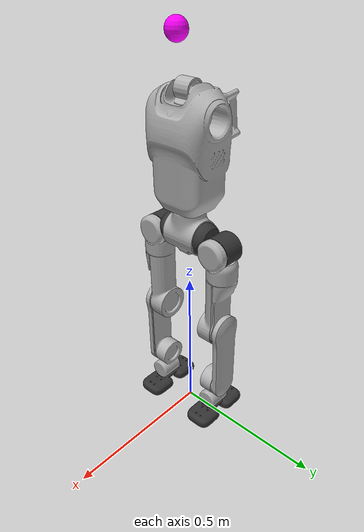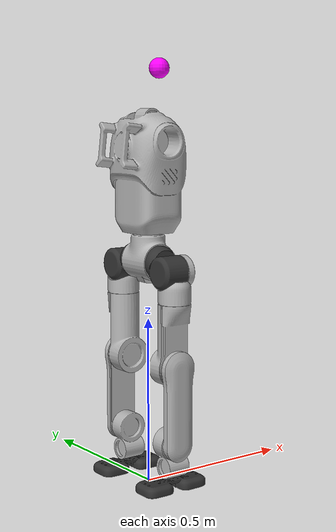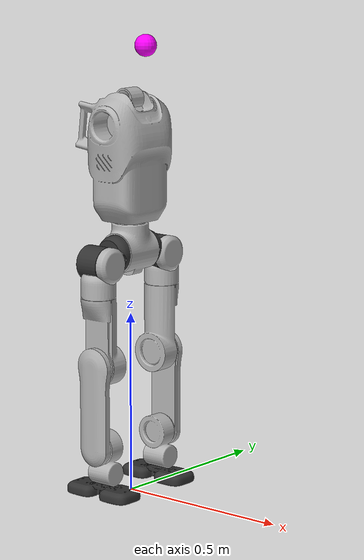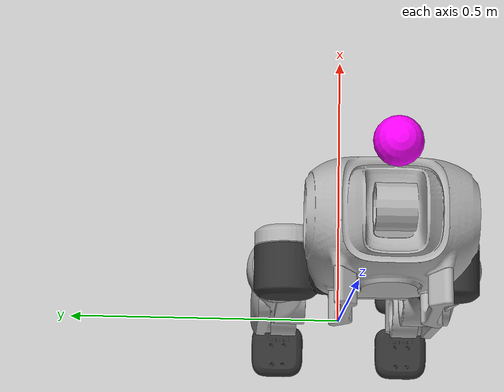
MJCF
<mujoco model="E1_2_v1">
  <compiler angle="radian" meshdir="./meshes/"/>

  <default>
    <default class="e1">
      <geom contype="0" conaffinity="0"/>
      <joint frictionloss="0.01" damping="0.01"/>

      <default class="hip">
        <default class="hip_pitch">
          <joint axis="0 1 0" range="-2.5307 2.8798" actuatorfrcrange="-120 120" armature="0.01"/>
        </default>
        <default class="hip_roll">
          <joint axis="1 0 0" actuatorfrcrange="-60 60" armature="0.01"/>
        </default>
        <default class="hip_yaw">
          <joint axis="0 0 1" range="-2.0944 2.0944" actuatorfrcrange="-36 36" armature="0.01"/>
        </default>
      </default>
      <default class="knee">
        <joint axis="0 1 0" range="0 2.2689" actuatorfrcrange="-120 120" armature="0.01"/>
      </default>
      <default class="ankle">
        <default class="ankle_pitch">
          <joint axis="0 1 0" range="-0.5236 0.5236" actuatorfrcrange="-36 36" armature="0.01"/>
        </default>
        <default class="ankle_roll">
          <joint axis="1 0 0" range="-1.5708 1.5708" actuatorfrcrange="-30 30" armature="0.01"/>
        </default>
      </default>
      <default class="waist_yaw">
        <joint axis="0 0 1" range="-2.0944 2.0944" actuatorfrcrange="-60 60" armature="0.01"/>
      </default>
      <default class="visual">
        <geom group="2" type="mesh" density="0" material="silver"/>
      </default>
      <default class="collision">
        <geom group="3" type="mesh" rgba=".2 .6 .2 .3" contype="1" conaffinity="1"/>
      </default>
    </default>
  </default>

  <asset>
    <material name="silver" rgba="0.7 0.7 0.7 1"/>
    <material name="black" rgba="0.2 0.2 0.2 1"/>

    <mesh name="pelvis" file="pelvis.STL"/>
    <mesh name="left_hip_pitch_link" file="left_hip_pitch_link.STL"/>
    <mesh name="left_hip_roll_link" file="left_hip_roll_link.STL"/>
    <mesh name="left_hip_yaw_link" file="left_hip_yaw_link.STL"/>
    <mesh name="left_knee_link" file="left_knee_link.STL"/>
    <mesh name="left_ankle_pitch_link" file="left_ankle_pitch_link.STL"/>
    <mesh name="left_ankle_roll_link_v1_2" file="left_ankle_roll_link_v1_2.STL"/>
    <mesh name="right_hip_pitch_link" file="right_hip_pitch_link.STL"/>
    <mesh name="right_hip_roll_link" file="right_hip_roll_link.STL"/>
    <mesh name="right_hip_yaw_link" file="right_hip_yaw_link.STL"/>
    <mesh name="right_knee_link" file="right_knee_link.STL"/>
    <mesh name="right_ankle_pitch_link" file="right_ankle_pitch_link.STL"/>
    <mesh name="right_ankle_roll_link_v1_2" file="right_ankle_roll_link_v1_2.STL"/>
    <mesh name="torso_link" file="torso_link.STL"/>
  </asset>

  <worldbody>
    <body name="pelvis" pos="0 0 0.675" childclass="e1">
      <inertial pos="-2.026e-05 0 0.0250193" quat="1 -1.77058e-05 -6.2652e-05 0.000906207" mass="3.6" diaginertia="0.0112704 0.00928407 0.00672158"/>
      <freejoint name="floating_base_joint"/>
      <geom class="visual" mesh="pelvis"/>
      <geom name="pelvis_collision" class="collision" mesh="pelvis"/>
      <body name="left_hip_pitch_link" pos="0 0.0575 0">
        <inertial pos="0.00088737 0.0559209 -0.0170011" quat="0.525183 0.830564 -0.161076 0.0916522" mass="1.01" diaginertia="0.00103812 0.00100921 0.000721394"/>
        <joint name="left_hip_pitch_joint" class="hip_pitch"/>
        <geom class="visual" material="black" mesh="left_hip_pitch_link"/>
        <body name="left_hip_roll_link" pos="0 0.0625 -0.02">
          <inertial pos="-0.00054795 0.00928439 -0.070913" quat="0.72708 0.0123078 0.0971982 0.679526" mass="0.981" diaginertia="0.00140293 0.0012261 0.000954215"/>
          <joint name="left_hip_roll_joint" class="hip_roll" range="-0.5236 3.1416"/>
          <geom class="visual" mesh="left_hip_roll_link"/>
          <body name="left_hip_yaw_link" pos="0 0.01 -0.098">
            <inertial pos="-8.81e-06 -0.00845833 -0.163113" quat="0.707299 -0.00656895 0.00682479 0.706851" mass="1.56" diaginertia="0.00493085 0.00429472 0.00135114"/>
            <joint name="left_hip_yaw_joint" class="hip_yaw"/>
            <geom class="visual" mesh="left_hip_yaw_link"/>
            <body name="left_knee_link" pos="0 0 -0.182">
              <inertial pos="-0.00054127 0.020434 -0.100513" quat="0.710429 -0.000848428 0.00238427 0.703764" mass="0.389" diaginertia="0.00417321 0.00390613 0.000296172"/>
              <joint name="left_knee_joint" class="knee"/>
              <geom class="visual" mesh="left_knee_link"/>
              <body name="left_ankle_pitch_link" pos="0 0 -0.23">
                <inertial pos="0.00011592 -0.00958151 -0.0284272" quat="0.705154 0.0494053 -0.049277 0.705612" mass="1.333" diaginertia="0.00253878 0.00227413 0.000815969"/>
                <joint name="left_ankle_pitch_joint" class="ankle_pitch"/>
                <geom class="visual" mesh="left_ankle_pitch_link"/>
                <body name="left_ankle_roll_link" pos="0 -0.016 -0.07">
                  <inertial pos="-0.00176848 0 -0.0465728" quat="0 0.706212 0 0.708" mass="0.578" diaginertia="0.0023466 0.00219847 0.000444688"/>
                  <joint name="left_ankle_roll_joint" class="ankle_roll"/>
                  <geom class="visual" material="black" mesh="left_ankle_roll_link_v1_2"/>
                  <geom name="left_foot1_collision" type="capsule" size="0.01" fromto="-0.095 -0.0357 -0.060 0.095 -0.0357 -0.060" contype="1" conaffinity="0" rgba="0.8 0.4 0.4 1" group="3"/>
                  <geom name="left_foot2_collision" type="capsule" size="0.01" fromto="-0.095 -0.0238 -0.060 0.095 -0.0238 -0.060" contype="1" conaffinity="0" rgba="0.8 0.4 0.4 1" group="3"/>
                  <geom name="left_foot3_collision" type="capsule" size="0.01" fromto="-0.095 -0.0119 -0.060 0.095 -0.0119 -0.060" contype="1" conaffinity="0" rgba="0.8 0.4 0.4 1" group="3"/>
                  <geom name="left_foot4_collision" type="capsule" size="0.01" fromto="-0.095 0 -0.060 0.095 0 -0.060" contype="1" conaffinity="0" rgba="0.8 0.4 0.4 1" group="3"/>
                  <geom name="left_foot5_collision" type="capsule" size="0.01" fromto="-0.095 0.0119 -0.060 0.095 0.0119 -0.060" contype="1" conaffinity="0" rgba="0.8 0.4 0.4 1" group="3"/>
                  <geom name="left_foot6_collision" type="capsule" size="0.01" fromto="-0.095 0.0238 -0.060 0.095 0.0238 -0.060" contype="1" conaffinity="0" rgba="0.8 0.4 0.4 1" group="3"/>
                  <geom name="left_foot7_collision" type="capsule" size="0.01" fromto="-0.095 0.0357 -0.060 0.095 0.0357 -0.060" contype="1" conaffinity="0" rgba="0.8 0.4 0.4 1" group="3"/>
                  <site name="left_foot" rgba="1 0 0 1" pos="0 0 -0.070"/>
                </body>
              </body>
            </body>
          </body>
        </body>
      </body>
      <body name="right_hip_pitch_link" pos="0 -0.0575 0">
        <inertial pos="0.00088737 -0.0559194 -0.0170037" quat="0.830604 0.524849 -0.0921638 0.16167" mass="1.005" diaginertia="0.00103816 0.00100913 0.000721421"/>
        <joint name="right_hip_pitch_joint" class="hip_pitch"/>
        <geom class="visual" material="black" mesh="right_hip_pitch_link"/>
        <body name="right_hip_roll_link" pos="0 -0.0625 -0.02">
          <inertial pos="-0.00054795 -0.00928439 -0.070913" quat="0.679526 0.0971982 0.0123078 0.72708" mass="0.981" diaginertia="0.00140293 0.0012261 0.000954215"/>
          <joint name="right_hip_roll_joint" class="hip_roll" range="-3.1416 0.5236"/>
          <geom class="visual" mesh="right_hip_roll_link"/>
          <body name="right_hip_yaw_link" pos="0 -0.01 -0.098">
            <inertial pos="8.81e-06 0.00845833 -0.163113" quat="0.707267 0.00689281 -0.00650074 0.706883" mass="1.561" diaginertia="0.00493085 0.00429472 0.00135113"/>
            <joint name="right_hip_yaw_joint" class="hip_yaw"/>
            <geom class="visual" mesh="right_hip_yaw_link"/>
            <body name="right_knee_link" pos="0 0 -0.182">
              <inertial pos="-0.00054256 -0.020434 -0.100513" quat="0.703753 0.00255437 -0.000679727 0.71044" mass="0.389" diaginertia="0.00417321 0.00390614 0.000296163"/>
              <joint name="right_knee_joint" class="knee"/>
              <geom class="visual" mesh="right_knee_link"/>
              <body name="right_ankle_pitch_link" pos="0 0 -0.23">
                <inertial pos="0.00011592 0.00956002 -0.0284576" quat="0.706733 -0.0493233 0.0493065 0.704035" mass="1.333" diaginertia="0.0025364 0.00227145 0.000815675"/>
                <joint name="right_ankle_pitch_joint" class="ankle_pitch"/>
                <geom class="visual" mesh="right_ankle_pitch_link"/>
                <body name="right_ankle_roll_link" pos="0 0.016 -0.07">
                  <inertial pos="-0.00176848 0 -0.0465753" quat="0 0.706212 0 0.708" mass="0.578" diaginertia="0.0023466 0.00219847 0.000444688"/>
                  <joint name="right_ankle_roll_joint" class="ankle_roll"/>
                  <geom class="visual" material="black" mesh="right_ankle_roll_link_v1_2"/>
                  <geom name="right_foot1_collision" type="capsule" size="0.01" fromto="-0.095 -0.0357 -0.060 0.095 -0.0357 -0.060" contype="1" conaffinity="0" rgba="0.8 0.4 0.4 1" group="3"/>
                  <geom name="right_foot2_collision" type="capsule" size="0.01" fromto="-0.095 -0.0238 -0.060 0.095 -0.0238 -0.060" contype="1" conaffinity="0" rgba="0.8 0.4 0.4 1" group="3"/>
                  <geom name="right_foot3_collision" type="capsule" size="0.01" fromto="-0.095 -0.0119 -0.060 0.095 -0.0119 -0.060" contype="1" conaffinity="0" rgba="0.8 0.4 0.4 1" group="3"/>
                  <geom name="right_foot4_collision" type="capsule" size="0.01" fromto="-0.095 0 -0.060 0.095 0 -0.060" contype="1" conaffinity="0" rgba="0.8 0.4 0.4 1" group="3"/>
                  <geom name="right_foot5_collision" type="capsule" size="0.01" fromto="-0.095 0.0119 -0.060 0.095 0.0119 -0.060" contype="1" conaffinity="0" rgba="0.8 0.4 0.4 1" group="3"/>
                  <geom name="right_foot6_collision" type="capsule" size="0.01" fromto="-0.095 0.0238 -0.060 0.095 0.0238 -0.060" contype="1" conaffinity="0" rgba="0.8 0.4 0.4 1" group="3"/>
                  <geom name="right_foot7_collision" type="capsule" size="0.01" fromto="-0.095 0.0357 -0.060 0.095 0.0357 -0.060" contype="1" conaffinity="0" rgba="0.8 0.4 0.4 1" group="3"/>
                  <site name="right_foot" rgba="1 0 0 1" pos="0 0 -0.070"/>
                </body>
              </body>
            </body>
          </body>
        </body>
      </body>
      <body name="torso_link" pos="0 0 0.12">
        <inertial pos="0.00939865 -0.00010371 0.142031" quat="0.998895 0.000719594 0.047 0.000291884" mass="5.45" diaginertia="0.0520713 0.039092 0.0193737"/>
        <joint name="waist_yaw_joint" class="waist_yaw"/>
        <site name="imu_in_torso" size="0.01" pos="0 0 0" rgba="1 0 0 1"/>
        <geom class="visual" mesh="torso_link"/>
        <camera name="depth_cam" pos="0.049 0.01 0.44" xyaxes="0 -1 0  0.743 0 0.669" fovy="58" resolution="64 36"/>
        <geom name="depth_cam_vis" pos="0.049 0.01 0.44" size="0.03" rgba="1 0 1 1" type="sphere" contype="0" conaffinity="0"/>
      </body>
    </body>
  </worldbody>

<!--    &lt;!&ndash; LEFT LEG &ndash;&gt;-->
<!--    &lt;!&ndash; RIGHT LEG &ndash;&gt;-->
<!--    &lt;!&ndash; WAIST &ndash;&gt;-->
<!--    &lt;!&ndash; LEFT ARM &ndash;&gt;-->
<!--    &lt;!&ndash; RIGHT ARM &ndash;&gt;-->

  <sensor>
    <gyro name="imu_ang_vel" site="imu_in_torso"/>
    <velocimeter name="imu_lin_vel" site="imu_in_torso"/>
    <accelerometer name="imu_lin_acc" site="imu_in_torso"/>
    <subtreeangmom name="root_angmom" body="pelvis"/>
  </sensor>

</mujoco>
